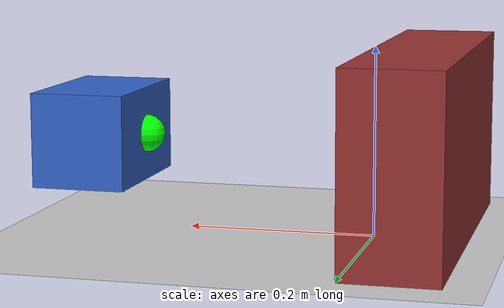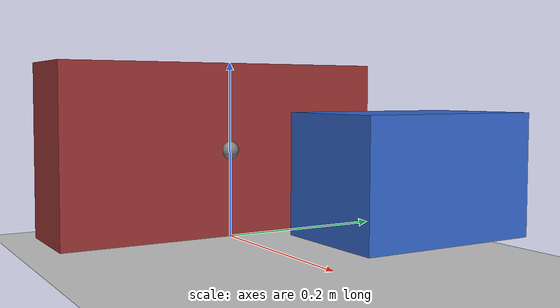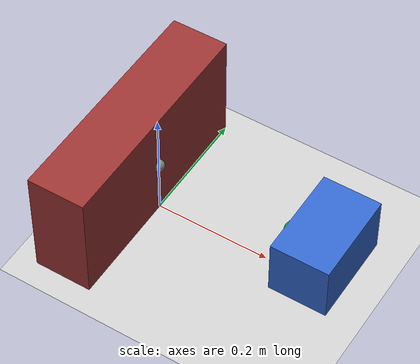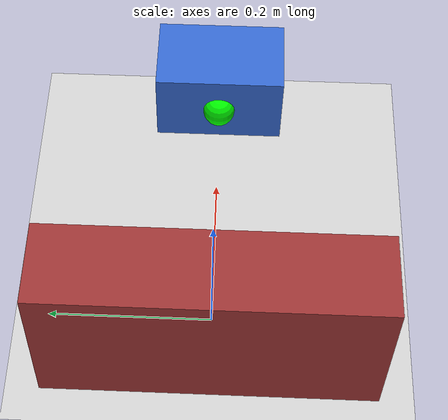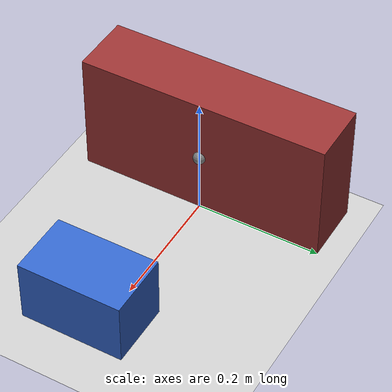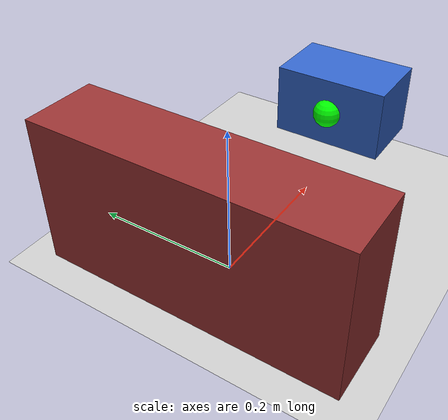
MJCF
<?xml version="1.0" ?>
<mujoco model="mass_spring_damper">
  <compiler angle="degree" coordinate="local"/>
  <option timestep="0.001" integrator="RK4"/>

  <worldbody>
    <geom name="ground" type="plane" pos="0 0 0" size="0 0 0.01" rgba="0.8 0.8 0.8 1"/>
    <body name="wall" pos="0 0 0">
      <geom name="wall_geom" type="box" pos="-0.05 0 0.10" size="0.05 0.2 0.10" rgba="0.6 0.2 0.2 1"
            contype="0" conaffinity="0"/>
      <site name="wall_site" pos="0 0 0.10" size="0.01"/>
    </body>

    <body name="mass" pos="0.30 0 0.10">
      <joint name="slider" type="slide" axis="1 0 0" damping="5"/>
      <inertial pos="0 0 0" mass="1.0" diaginertia="0.001 0.0005 0.001"/>
      <geom name="mass_geom" type="box" size="0.05 0.08 0.05" rgba="0.2 0.4 0.8 1"/>
      <site name="mass_site" pos="-0.05 0 0" size="0.02" rgba="0 1 0 1"/>
    </body>
  </worldbody>

  <tendon>
    <fixed name="spring_tendon" springlength="0.20" stiffness="200" damping="0">
      <joint joint="slider" coef="-1"/>
    </fixed>
  </tendon>

  <visual>
    <map znear="0.01"/>
  </visual>
</mujoco>
